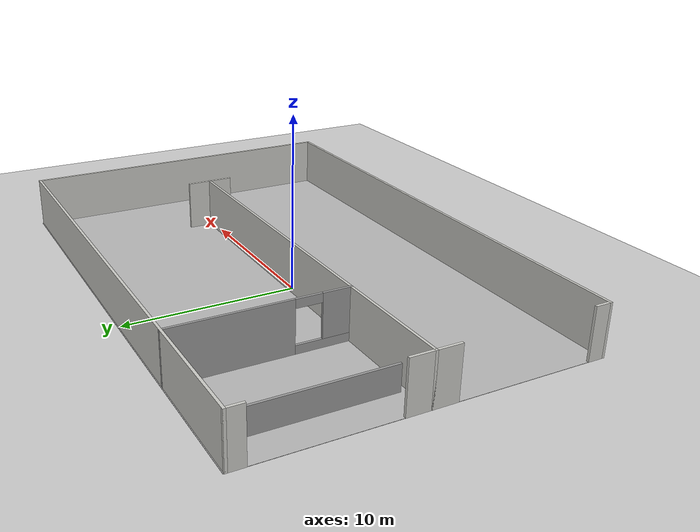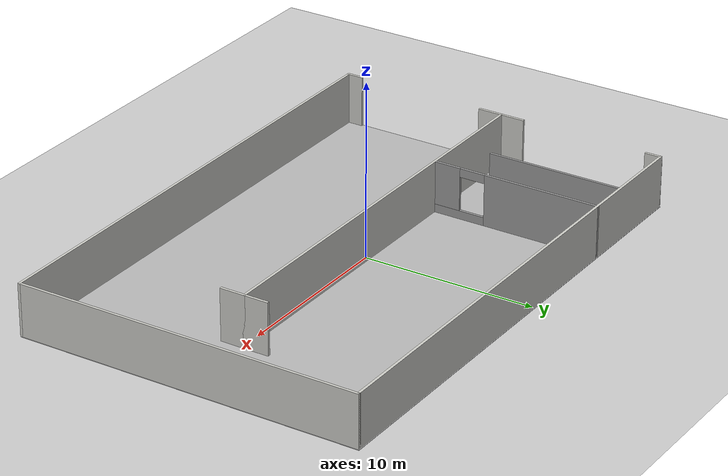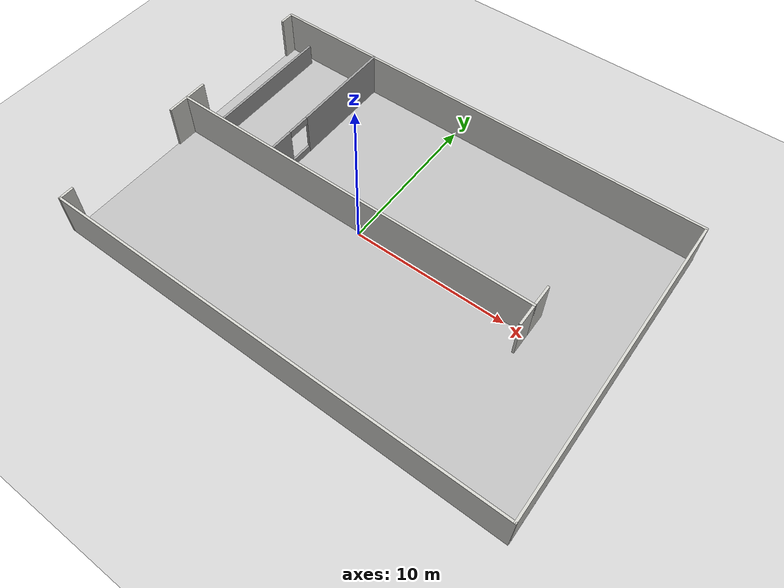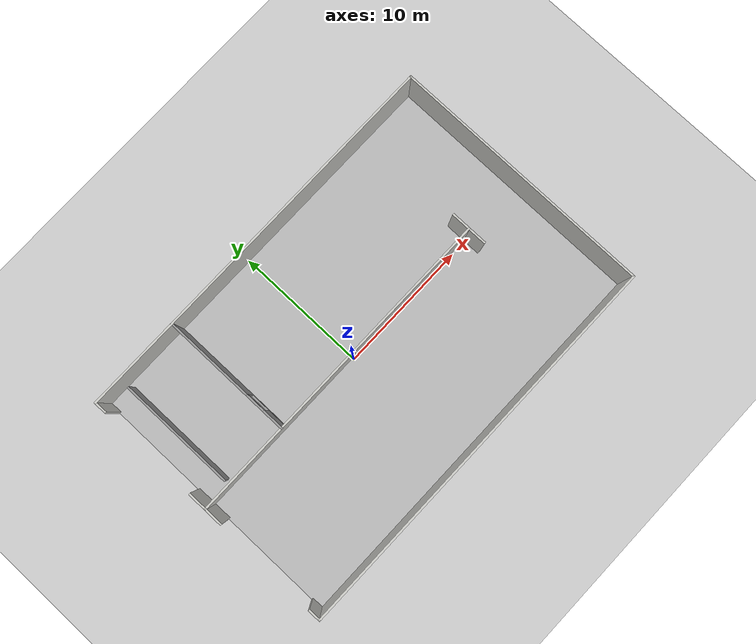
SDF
<sdf version="1.6">
 <world name="default">
  <model name="ground_plane">
   <static>1</static>
   <link name="link">
    <collision name="collision">
     <geometry><plane><normal>0 0 1</normal><size>100 100</size></plane></geometry>
     <surface><friction><ode><mu>100</mu><mu2>50</mu2></ode></friction></surface>
    </collision>
    <visual name="visual">
     <cast_shadows>0</cast_shadows>
     <geometry><plane><normal>0 0 1</normal><size>100 100</size></plane></geometry>
     <material>
      <script><uri>file://media/materials/scripts/gazebo.material</uri><name>Gazebo/Grey</name></script>
     </material>
    </visual>
   </link>
  </model>
  <model name="my_ground_plane">
   <static>1</static>
   <link name="link">
    <collision name="collision">
     <geometry><plane><normal>0 0 1</normal><size>30 20</size></plane></geometry>
     <surface><friction><ode><mu>100</mu><mu2>50</mu2></ode></friction></surface>
    </collision>
    <visual name="visual">
     <cast_shadows>0</cast_shadows>
     <geometry><plane><normal>0 0 1</normal><size>30 20</size></plane></geometry>
     <material>
      <script>
       <uri>model://my_ground_plane/materials/scripts</uri>
       <uri>model://my_ground_plane/materials/textures/</uri>
       <name>MyGroundPlane/Image</name>
      </script>
     </material>
    </visual>
   </link>
   <pose>1.42327 0.152934 0 0 -0 0</pose>
  </model>
  <model name="robot_house2_0">
   <pose>1.40144 0.109939 0 0 -0 0</pose>
   <link name="Wall_0">
    <collision name="Wall_0_Collision">
     <geometry><box><size>30 0.15 3</size></box></geometry>
     <pose>0 0 1.5 0 -0 0</pose>
    </collision>
    <visual name="Wall_0_Visual">
     <pose>0 0 1.5 0 -0 0</pose>
     <geometry><box><size>30 0.15 3</size></box></geometry>
     <material>
      <script><uri>file://media/materials/scripts/gazebo.material</uri><name>Gazebo/CeilingTiled</name></script>
      <ambient>1 1 1 1</ambient>
     </material>
    </visual>
    <pose>-1e-06 9.92401 0 0 -0 0</pose>
   </link>
   <link name="Wall_1">
    <collision name="Wall_1_Collision">
     <geometry><box><size>20 0.15 3</size></box></geometry>
     <pose>0 0 1.5 0 -0 0</pose>
    </collision>
    <visual name="Wall_1_Visual">
     <pose>0 0 1.5 0 -0 0</pose>
     <geometry><box><size>20 0.15 3</size></box></geometry>
     <material>
      <script><uri>file://media/materials/scripts/gazebo.material</uri><name>Gazebo/CeilingTiled</name></script>
      <ambient>1 1 1 1</ambient>
     </material>
    </visual>
    <pose>14.925 -0.00099 0 0 0 -1.5708</pose>
   </link>
   <link name="Wall_11">
    <collision name="Wall_11_Collision">
     <geometry><box><size>1.5 0.15 3</size></box></geometry>
     <pose>0 0 1.5 0 -0 0</pose>
    </collision>
    <visual name="Wall_11_Visual">
     <pose>0 0 1.5 0 -0 0</pose>
     <geometry><box><size>1.5 0.15 3</size></box></geometry>
     <material>
      <script><uri>file://media/materials/scripts/gazebo.material</uri><name>Gazebo/CeilingTiled</name></script>
      <ambient>1 1 1 1</ambient>
     </material>
    </visual>
    <pose>-14.925 0.74901 0 0 -0 1.5708</pose>
   </link>
   <link name="Wall_14">
    <collision name="Wall_14_Collision">
     <geometry><box><size>9 0.15 1.5</size></box></geometry>
     <pose>0 0 0.75 0 -0 0</pose>
    </collision>
    <visual name="Wall_14_Visual">
     <pose>0 0 0.75 0 -0 0</pose>
     <geometry><box><size>9 0.15 1.5</size></box></geometry>
     <material>
      <script><uri>file://media/materials/scripts/gazebo.material</uri><name>Gazebo/Grey</name></script>
      <ambient>1 1 1 1</ambient>
     </material>
    </visual>
    <pose>-13.075 4.99901 0 0 0 -1.5708</pose>
   </link>
   <link name="Wall_16">
    <collision name="Wall_16_Collision">
     <geometry><box><size>1.5 0.15 3</size></box></geometry>
     <pose>0 0 1.5 0 -0 0</pose>
    </collision>
    <visual name="Wall_16_Visual">
     <pose>0 0 1.5 0 -0 0</pose>
     <geometry><box><size>1.5 0.15 3</size></box></geometry>
     <material>
      <script><uri>file://media/materials/scripts/gazebo.material</uri><name>Gazebo/CeilingTiled</name></script>
      <ambient>1 1 1 1</ambient>
     </material>
    </visual>
    <pose>-14.925 -0.60099 0 0 0 -1.5708</pose>
   </link>
   <link name="Wall_18">
    <collision name="Wall_18_Collision">
     <geometry><box><size>1.5 0.15 3</size></box></geometry>
     <pose>0 0 1.5 0 -0 0</pose>
    </collision>
    <visual name="Wall_18_Visual">
     <pose>0 0 1.5 0 -0 0</pose>
     <geometry><box><size>1.5 0.15 3</size></box></geometry>
     <material>
      <script><uri>file://media/materials/scripts/gazebo.material</uri><name>Gazebo/CeilingTiled</name></script>
      <ambient>1 1 1 1</ambient>
     </material>
    </visual>
    <pose>9.925 0.74901 0 0 -0 1.5708</pose>
   </link>
   <link name="Wall_2">
    <collision name="Wall_2_Collision">
     <geometry><box><size>30 0.15 3</size></box></geometry>
     <pose>0 0 1.5 0 -0 0</pose>
    </collision>
    <visual name="Wall_2_Visual">
     <pose>0 0 1.5 0 -0 0</pose>
     <geometry><box><size>30 0.15 3</size></box></geometry>
     <material>
      <script><uri>file://media/materials/scripts/gazebo.material</uri><name>Gazebo/CeilingTiled</name></script>
      <ambient>1 1 1 1</ambient>
     </material>
    </visual>
    <pose>-1e-06 -9.92599 0 0 -0 3.14159</pose>
   </link>
   <link name="Wall_20">
    <collision name="Wall_20_Collision">
     <geometry><box><size>1.5 0.15 3</size></box></geometry>
     <pose>0 0 1.5 0 -0 0</pose>
    </collision>
    <visual name="Wall_20_Visual">
     <pose>0 0 1.5 0 -0 0</pose>
     <geometry><box><size>1.5 0.15 3</size></box></geometry>
     <material>
      <script><uri>file://media/materials/scripts/gazebo.material</uri><name>Gazebo/CeilingTiled</name></script>
      <ambient>1 1 1 1</ambient>
     </material>
    </visual>
    <pose>9.925 -0.60099 0 0 0 -1.5708</pose>
   </link>
   <link name="Wall_22">
    <collision name="Wall_22_Collision">
     <geometry><box><size>1 0.15 3</size></box></geometry>
     <pose>0 0 1.5 0 -0 0</pose>
    </collision>
    <visual name="Wall_22_Visual">
     <pose>0 0 1.5 0 -0 0</pose>
     <geometry><box><size>1 0.15 3</size></box></geometry>
     <material>
      <script><uri>file://media/materials/scripts/gazebo.material</uri><name>Gazebo/CeilingTiled</name></script>
      <ambient>1 1 1 1</ambient>
     </material>
    </visual>
    <pose>-14.925 -9.50099 0 0 -0 1.5708</pose>
   </link>
   <link name="Wall_5">
    <collision name="Wall_5_Collision">
     <geometry><box><size>25 0.15 3</size></box></geometry>
     <pose>0 0 1.5 0 -0 0</pose>
    </collision>
    <visual name="Wall_5_Visual">
     <pose>0 0 1.5 0 -0 0</pose>
     <geometry><box><size>25 0.15 3</size></box></geometry>
     <material>
      <script><uri>file://media/materials/scripts/gazebo.material</uri><name>Gazebo/CeilingTiled</name></script>
      <ambient>1 1 1 1</ambient>
     </material>
    </visual>
    <pose>-2.5 0.07401 0 0 -0 0</pose>
   </link>
   <link name="Wall_7">
    <pose>-7.925 5.00101 0 0 0 -1.5708</pose>
    <visual name="Wall_7_Visual_0">
     <pose>-1.5865 0 1.5 0 -0 0</pose>
     <geometry><box><size>6.827 0.15 3</size></box></geometry>
     <material>
      <script><uri>file://media/materials/scripts/gazebo.material</uri><name>Gazebo/Grey</name></script>
      <ambient>1 1 1 1</ambient>
     </material>
    </visual>
    <collision name="Wall_7_Collision_0">
     <geometry><box><size>6.827 0.15 3</size></box></geometry>
     <pose>-1.5865 0 1.5 0 -0 0</pose>
    </collision>
    <visual name="Wall_7_Visual_1">
     <pose>3.4135 0 0.25 0 -0 0</pose>
     <geometry><box><size>3.173 0.15 0.5</size></box></geometry>
     <material>
      <script><uri>file://media/materials/scripts/gazebo.material</uri><name>Gazebo/Grey</name></script>
      <ambient>1 1 1 1</ambient>
     </material>
    </visual>
    <collision name="Wall_7_Collision_1">
     <geometry><box><size>3.173 0.15 0.5</size></box></geometry>
     <pose>3.4135 0 0.25 0 -0 0</pose>
    </collision>
    <visual name="Wall_7_Visual_2">
     <pose>4.1635 0 1.75 0 -0 0</pose>
     <geometry><box><size>1.673 0.15 2.5</size></box></geometry>
     <material>
      <script><uri>file://media/materials/scripts/gazebo.material</uri><name>Gazebo/Grey</name></script>
      <ambient>1 1 1 1</ambient>
     </material>
    </visual>
    <collision name="Wall_7_Collision_2">
     <geometry><box><size>1.673 0.15 2.5</size></box></geometry>
     <pose>4.1635 0 1.75 0 -0 0</pose>
    </collision>
    <visual name="Wall_7_Visual_3">
     <pose>2.577 0 2.75 0 -0 0</pose>
     <geometry><box><size>1.5 0.15 0.5</size></box></geometry>
     <material>
      <script><uri>file://media/materials/scripts/gazebo.material</uri><name>Gazebo/Grey</name></script>
      <ambient>1 1 1 1</ambient>
     </material>
    </visual>
    <collision name="Wall_7_Collision_3">
     <geometry><box><size>1.5 0.15 0.5</size></box></geometry>
     <pose>2.577 0 2.75 0 -0 0</pose>
    </collision>
   </link>
   <link name="Wall_9">
    <collision name="Wall_9_Collision">
     <geometry><box><size>1 0.15 3</size></box></geometry>
     <pose>0 0 1.5 0 -0 0</pose>
    </collision>
    <visual name="Wall_9_Visual">
     <pose>0 0 1.5 0 -0 0</pose>
     <geometry><box><size>1 0.15 3</size></box></geometry>
     <material>
      <script><uri>file://media/materials/scripts/gazebo.material</uri><name>Gazebo/CeilingTiled</name></script>
      <ambient>1 1 1 1</ambient>
     </material>
    </visual>
    <pose>-14.925 9.49901 0 0 0 -1.5708</pose>
   </link>
   <static>1</static>
  </model>
 </world>
</sdf>
